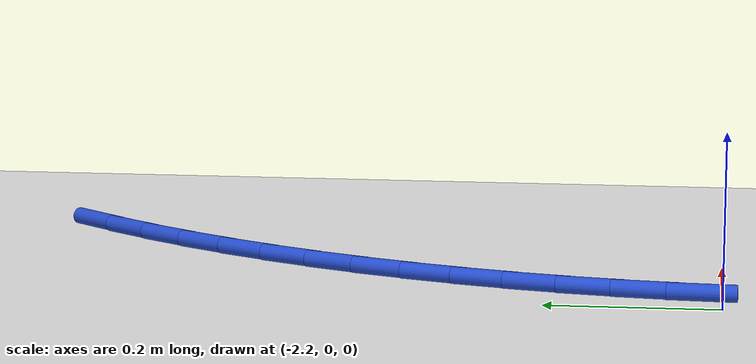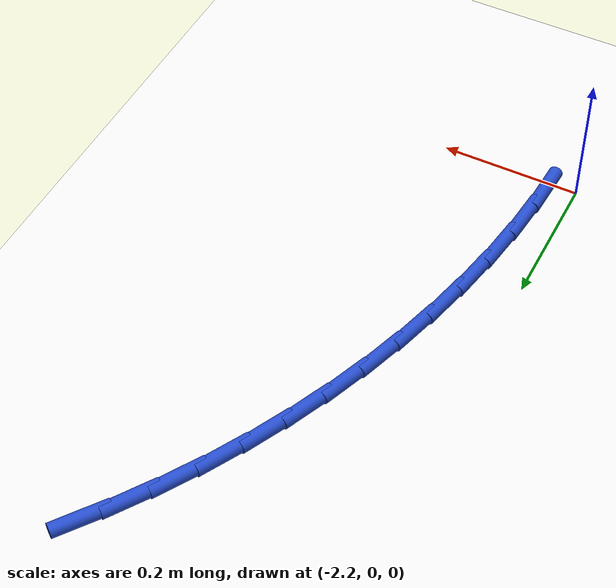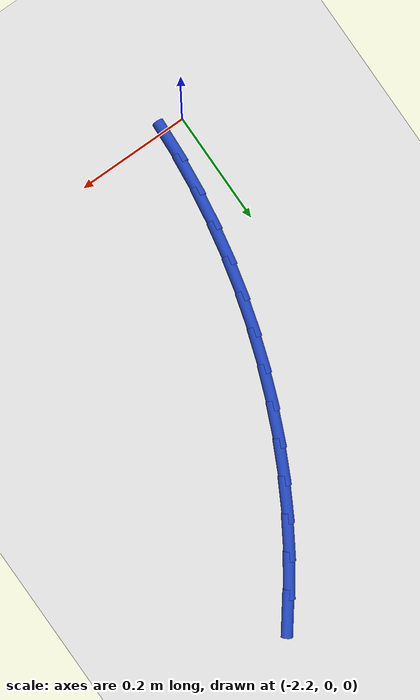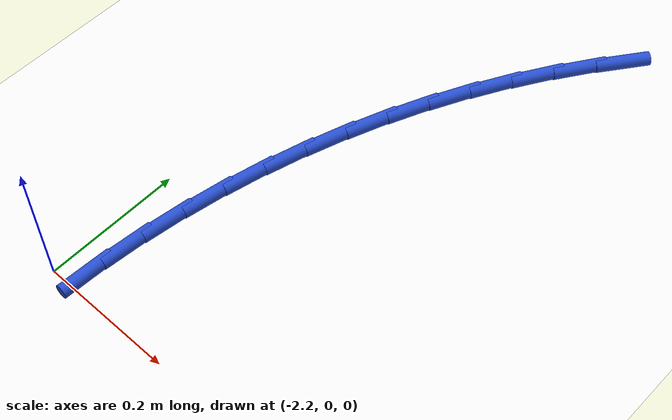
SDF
<sdf version="1.6">
 <world name="default">
  <model name="ground_plane">
   <static>1</static>
   <link name="link">
    <collision name="collision">
     <geometry><plane><normal>0 0 1</normal><size>100 100</size></plane></geometry>
     <surface><friction><ode><mu>100</mu><mu2>50</mu2></ode></friction></surface>
    </collision>
    <visual name="visual">
     <cast_shadows>0</cast_shadows>
     <geometry><plane><normal>0 0 1</normal><size>100 100</size></plane></geometry>
     <material>
      <script><uri>file://media/materials/scripts/gazebo.material</uri><name>Gazebo/WhiteGlow</name></script>
     </material>
    </visual>
   </link>
  </model>
  <model name="line">
   <link name="link_42">
    <pose>-1.8724394287469348 0.7727572452048121 0.01 0 1.57 0.9253438049239279</pose>
    <collision name="collision">
     <geometry><cylinder><radius>0.01</radius><length>0.08</length></cylinder></geometry>
    </collision>
    <visual name="visual">
     <material>
      <script><name>Gazebo/Blue</name><uri>file://media/materials/scripts/gazebo.material</uri></script>
     </material>
     <geometry><cylinder><radius>0.01</radius><length>0.08</length></cylinder></geometry>
    </visual>
   </link>
   <link name="link_43">
    <pose>-1.9103621429110602 0.7223986566709106 0.01 0 1.57 0.9740737997732839</pose>
    <collision name="collision">
     <geometry><cylinder><radius>0.01</radius><length>0.08</length></cylinder></geometry>
    </collision>
    <visual name="visual">
     <material>
      <script><name>Gazebo/Blue</name><uri>file://media/materials/scripts/gazebo.material</uri></script>
     </material>
     <geometry><cylinder><radius>0.01</radius><length>0.08</length></cylinder></geometry>
    </visual>
   </link>
   <link name="link_44">
    <pose>-1.9456731811896688 0.6704199098828467 0.01 0 1.57 1.022091171773181</pose>
    <collision name="collision">
     <geometry><cylinder><radius>0.01</radius><length>0.08</length></cylinder></geometry>
    </collision>
    <visual name="visual">
     <material>
      <script><name>Gazebo/Blue</name><uri>file://media/materials/scripts/gazebo.material</uri></script>
     </material>
     <geometry><cylinder><radius>0.01</radius><length>0.08</length></cylinder></geometry>
    </visual>
   </link>
   <link name="link_45">
    <pose>-1.978371968812474 0.6169315282526019 0.01 0 1.57 1.0693832165538693</pose>
    <collision name="collision">
     <geometry><cylinder><radius>0.01</radius><length>0.08</length></cylinder></geometry>
    </collision>
    <visual name="visual">
     <material>
      <script><name>Gazebo/Blue</name><uri>file://media/materials/scripts/gazebo.material</uri></script>
     </material>
     <geometry><cylinder><radius>0.01</radius><length>0.08</length></cylinder></geometry>
    </visual>
   </link>
   <link name="link_46">
    <pose>-2.008457931009189 0.5620440351921567 0.01 0 1.57 1.115952062738787</pose>
    <collision name="collision">
     <geometry><cylinder><radius>0.01</radius><length>0.08</length></cylinder></geometry>
    </collision>
    <visual name="visual">
     <material>
      <script><name>Gazebo/Blue</name><uri>file://media/materials/scripts/gazebo.material</uri></script>
     </material>
     <geometry><cylinder><radius>0.01</radius><length>0.08</length></cylinder></geometry>
    </visual>
   </link>
   <link name="link_47">
    <pose>-2.035930493009527 0.5058679541134932 0.01 0 1.57 1.1618132859058947</pose>
    <collision name="collision">
     <geometry><cylinder><radius>0.01</radius><length>0.08</length></cylinder></geometry>
    </collision>
    <visual name="visual">
     <material>
      <script><name>Gazebo/Blue</name><uri>file://media/materials/scripts/gazebo.material</uri></script>
     </material>
     <geometry><cylinder><radius>0.01</radius><length>0.08</length></cylinder></geometry>
    </visual>
   </link>
   <link name="link_48">
    <pose>-2.060789080043201 0.44851380842859223 0.01 0 1.57 1.2069944135883177</pose>
    <collision name="collision">
     <geometry><cylinder><radius>0.01</radius><length>0.08</length></cylinder></geometry>
    </collision>
    <visual name="visual">
     <material>
      <script><name>Gazebo/Blue</name><uri>file://media/materials/scripts/gazebo.material</uri></script>
     </material>
     <geometry><cylinder><radius>0.01</radius><length>0.08</length></cylinder></geometry>
    </visual>
   </link>
   <link name="link_49">
    <pose>-2.0830331173399266 0.3900921215494354 0.01 0 1.57 1.2515581160542424</pose>
    <collision name="collision">
     <geometry><cylinder><radius>0.01</radius><length>0.08</length></cylinder></geometry>
    </collision>
    <visual name="visual">
     <material>
      <script><name>Gazebo/Blue</name><uri>file://media/materials/scripts/gazebo.material</uri></script>
     </material>
     <geometry><cylinder><radius>0.01</radius><length>0.08</length></cylinder></geometry>
    </visual>
   </link>
   <link name="link_50">
    <pose>-2.1026604891300402 0.3307131533082569 0.01 0 1.57 1.2959213299765941</pose>
    <collision name="collision">
     <geometry><cylinder><radius>0.01</radius><length>0.08</length></cylinder></geometry>
    </collision>
    <visual name="visual">
     <material>
      <script><name>Gazebo/Blue</name><uri>file://media/materials/scripts/gazebo.material</uri></script>
     </material>
     <geometry><cylinder><radius>0.01</radius><length>0.08</length></cylinder></geometry>
    </visual>
   </link>
   <link name="link_51">
    <pose>-2.119646147458019 0.2704832411088672 0.01 0 1.57 1.3404259562729046</pose>
    <collision name="collision">
     <geometry><cylinder><radius>0.01</radius><length>0.08</length></cylinder></geometry>
    </collision>
    <visual name="visual">
     <material>
      <script><name>Gazebo/Blue</name><uri>file://media/materials/scripts/gazebo.material</uri></script>
     </material>
     <geometry><cylinder><radius>0.01</radius><length>0.08</length></cylinder></geometry>
    </visual>
   </link>
   <link name="link_52">
    <pose>-2.133947455210795 0.20950571382322983 0.01 0 1.57 1.38513851231872</pose>
    <collision name="collision">
     <geometry><cylinder><radius>0.01</radius><length>0.08</length></cylinder></geometry>
    </collision>
    <visual name="visual">
     <material>
      <script><name>Gazebo/Blue</name><uri>file://media/materials/scripts/gazebo.material</uri></script>
     </material>
     <geometry><cylinder><radius>0.01</radius><length>0.08</length></cylinder></geometry>
    </visual>
   </link>
   <link name="link_53">
    <pose>-2.145521326507238 0.1478838235639176 0.01 0 1.57 1.4301146455446938</pose>
    <collision name="collision">
     <geometry><cylinder><radius>0.01</radius><length>0.08</length></cylinder></geometry>
    </collision>
    <visual name="visual">
     <material>
      <script><name>Gazebo/Blue</name><uri>file://media/materials/scripts/gazebo.material</uri></script>
     </material>
     <geometry><cylinder><radius>0.01</radius><length>0.08</length></cylinder></geometry>
    </visual>
   </link>
   <link name="link_54">
    <pose>-2.1543246754662166 0.08572082244350326 0.01 0 1.57 1.4754052741126098</pose>
    <collision name="collision">
     <geometry><cylinder><radius>0.01</radius><length>0.08</length></cylinder></geometry>
    </collision>
    <visual name="visual">
     <material>
      <script><name>Gazebo/Blue</name><uri>file://media/materials/scripts/gazebo.material</uri></script>
     </material>
     <geometry><cylinder><radius>0.01</radius><length>0.08</length></cylinder></geometry>
    </visual>
   </link>
   <link name="link_55">
    <pose>-2.1603144162066004 0.023119962574559793 0.01 0 1.57 1.5210554968264065</pose>
    <collision name="collision">
     <geometry><cylinder><radius>0.01</radius><length>0.08</length></cylinder></geometry>
    </collision>
    <visual name="visual">
     <material>
      <script><name>Gazebo/Blue</name><uri>file://media/materials/scripts/gazebo.material</uri></script>
     </material>
     <geometry><cylinder><radius>0.01</radius><length>0.08</length></cylinder></geometry>
    </visual>
   </link>
  </model>
 </world>
</sdf>
